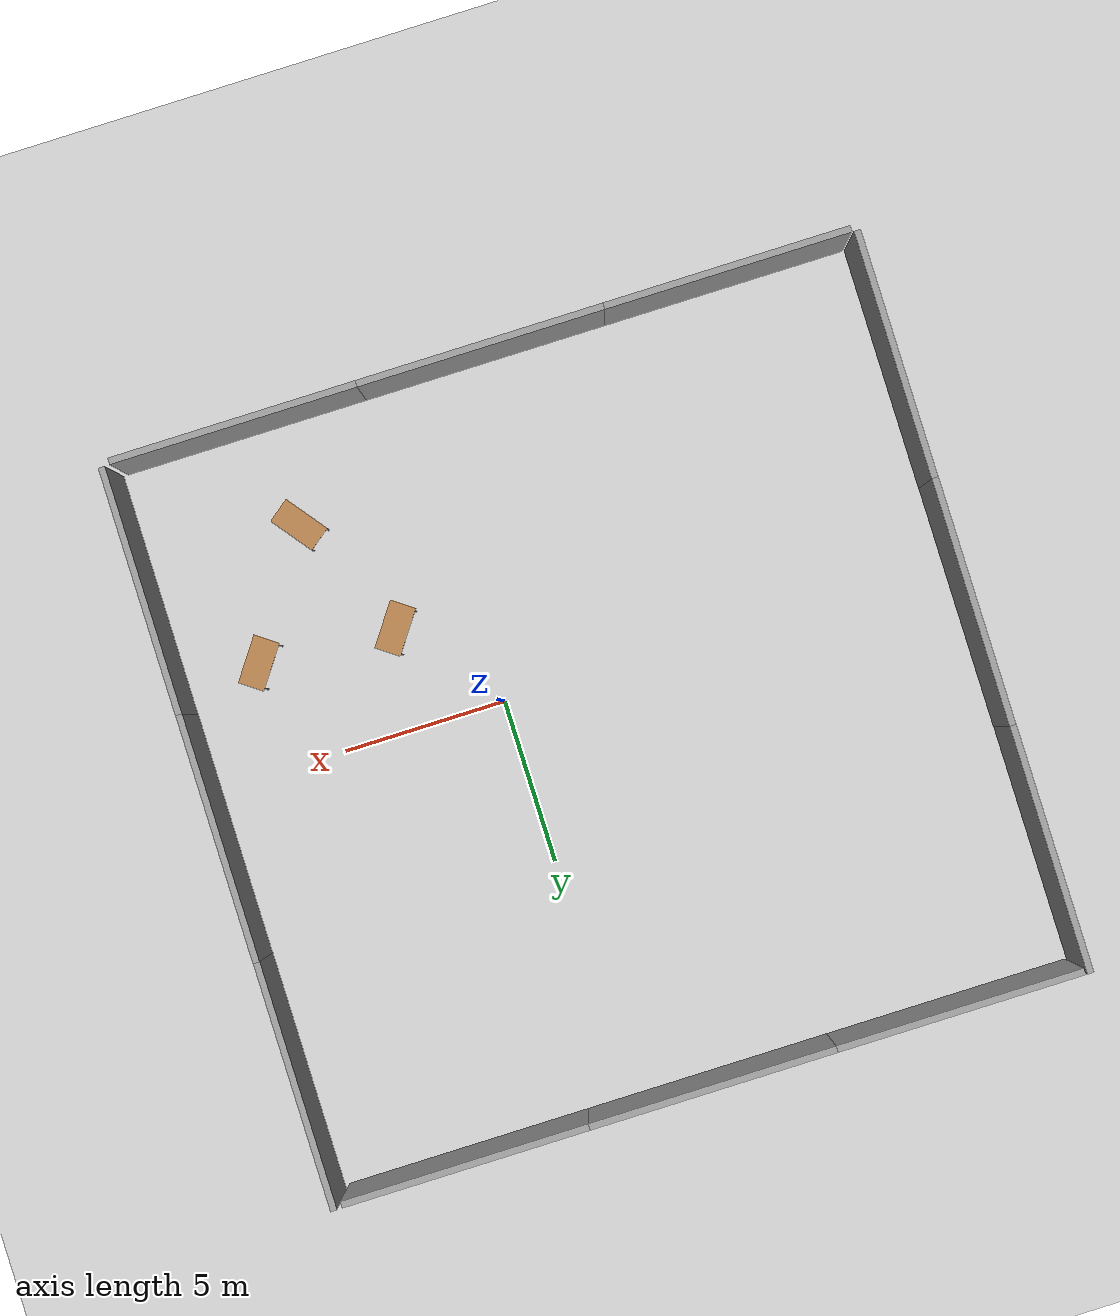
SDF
<sdf version="1.7">
 <world name="default">
  <light name="sun" type="directional">
   <pose>0 0 10 0 -0 0</pose>
   <diffuse>0.8 0.8 0.8 1</diffuse>
   <specular>0.2 0.2 0.2 1</specular>
   <attenuation>
    <range>1000</range>
    <constant>0.9</constant>
    <linear>0.01</linear>
    <quadratic>0.001</quadratic>
   </attenuation>
   <direction>-0.5 0.1 -0.9</direction>
   <spot><inner_angle>0</inner_angle><outer_angle>0</outer_angle><falloff>0</falloff></spot>
  </light>
  <model name="ground_plane">
   <static>1</static>
   <link name="link">
    <collision name="collision">
     <geometry><plane><normal>0 0 1</normal><size>100 100</size></plane></geometry>
     <surface>
      <contact><collide_bitmask>65535</collide_bitmask></contact>
      <friction><ode><mu>100</mu><mu2>50</mu2></ode></friction>
     </surface>
    </collision>
    <visual name="visual">
     <cast_shadows>0</cast_shadows>
     <geometry><plane><normal>0 0 1</normal><size>100 100</size></plane></geometry>
     <material>
      <script><uri>file://media/materials/scripts/gazebo.material</uri><name>Gazebo/Grey</name></script>
     </material>
    </visual>
   </link>
  </model>
  <gravity>0 0 -9.8</gravity>
  <magnetic_field>6e-06 2.3e-05 -4.2e-05</magnetic_field>
  <atmosphere type="adiabatic"/>
  <physics type="ode">
   <max_step_size>0.001</max_step_size>
   <real_time_factor>1</real_time_factor>
   <real_time_update_rate>1000</real_time_update_rate>
  </physics>
  <scene><ambient>0.4 0.4 0.4 1</ambient><background>0.7 0.7 0.7 1</background><shadows>1</shadows></scene>
  <spherical_coordinates>
   <surface_model>EARTH_WGS84</surface_model>
   <latitude_deg>0</latitude_deg>
   <longitude_deg>0</longitude_deg>
   <elevation>0</elevation>
   <heading_deg>0</heading_deg>
  </spherical_coordinates>
  <model name="grey_wall_clone_0">
   <static>1</static>
   <link name="link">
    <pose>0 0 1.4 0 -0 0</pose>
    <collision name="collision"><geometry><box><size>7.5 0.2 2.8</size></box></geometry></collision>
    <visual name="visual">
     <cast_shadows>0</cast_shadows>
     <geometry><box><size>7.5 0.2 2.8</size></box></geometry>
     <material>
      <script>
       <uri>model://grey_wall/materials/scripts</uri>
       <uri>model://grey_wall/materials/textures</uri>
       <name>vrc/grey_wall</name>
      </script>
     </material>
    </visual>
   </link>
   <pose>5 12.5 0 0 -0 0</pose>
  </model>
  <model name="grey_wall_clone_1">
   <static>1</static>
   <link name="link">
    <pose>0 0 1.4 0 -0 0</pose>
    <collision name="collision"><geometry><box><size>7.5 0.2 2.8</size></box></geometry></collision>
    <visual name="visual">
     <cast_shadows>0</cast_shadows>
     <geometry><box><size>7.5 0.2 2.8</size></box></geometry>
     <material>
      <script>
       <uri>model://grey_wall/materials/scripts</uri>
       <uri>model://grey_wall/materials/textures</uri>
       <name>vrc/grey_wall</name>
      </script>
     </material>
    </visual>
   </link>
   <pose>-2.5 12.5 0 0 -0 0</pose>
  </model>
  <model name="grey_wall_clone_1_clone">
   <static>1</static>
   <link name="link">
    <pose>0 0 1.4 0 -0 0</pose>
    <collision name="collision"><geometry><box><size>7.5 0.2 2.8</size></box></geometry></collision>
    <visual name="visual">
     <cast_shadows>0</cast_shadows>
     <geometry><box><size>7.5 0.2 2.8</size></box></geometry>
     <material>
      <script>
       <uri>model://grey_wall/materials/scripts</uri>
       <uri>model://grey_wall/materials/textures</uri>
       <name>vrc/grey_wall</name>
      </script>
     </material>
    </visual>
   </link>
   <pose>-10.0 12.5 0 0 -0 0</pose>
  </model>
  <model name="grey_wall_clone_2_clone">
   <static>1</static>
   <link name="link">
    <pose>0 0 1.4 0 -0 0</pose>
    <collision name="collision"><geometry><box><size>7.5 0.2 2.8</size></box></geometry></collision>
    <visual name="visual">
     <cast_shadows>0</cast_shadows>
     <geometry><box><size>7.5 0.2 2.8</size></box></geometry>
     <material>
      <script>
       <uri>model://grey_wall/materials/scripts</uri>
       <uri>model://grey_wall/materials/textures</uri>
       <name>vrc/grey_wall</name>
      </script>
     </material>
    </visual>
   </link>
   <pose>-13.9 8.85 0 0 -0 1.57</pose>
  </model>
  <model name="grey_wall_clone_2_clone_0">
   <static>1</static>
   <link name="link">
    <pose>0 0 1.4 0 -0 0</pose>
    <collision name="collision"><geometry><box><size>7.5 0.2 2.8</size></box></geometry></collision>
    <visual name="visual">
     <cast_shadows>0</cast_shadows>
     <geometry><box><size>7.5 0.2 2.8</size></box></geometry>
     <material>
      <script>
       <uri>model://grey_wall/materials/scripts</uri>
       <uri>model://grey_wall/materials/textures</uri>
       <name>vrc/grey_wall</name>
      </script>
     </material>
    </visual>
   </link>
   <pose>-13.9 1.35 0 0 -0 1.57</pose>
  </model>
  <model name="grey_wall_clone_2_clone_1">
   <static>1</static>
   <link name="link">
    <pose>0 0 1.4 0 -0 0</pose>
    <collision name="collision"><geometry><box><size>7.5 0.2 2.8</size></box></geometry></collision>
    <visual name="visual">
     <cast_shadows>0</cast_shadows>
     <geometry><box><size>7.5 0.2 2.8</size></box></geometry>
     <material>
      <script>
       <uri>model://grey_wall/materials/scripts</uri>
       <uri>model://grey_wall/materials/textures</uri>
       <name>vrc/grey_wall</name>
      </script>
     </material>
    </visual>
   </link>
   <pose>-13.9 -6.15 0 0 -0 1.57</pose>
  </model>
  <model name="grey_wall_clone_1_clone_clone">
   <static>1</static>
   <link name="link">
    <pose>0 0 1.4 0 -0 0</pose>
    <collision name="collision"><geometry><box><size>7.5 0.2 2.8</size></box></geometry></collision>
    <visual name="visual">
     <cast_shadows>0</cast_shadows>
     <geometry><box><size>7.5 0.2 2.8</size></box></geometry>
     <material>
      <script>
       <uri>model://grey_wall/materials/scripts</uri>
       <uri>model://grey_wall/materials/textures</uri>
       <name>vrc/grey_wall</name>
      </script>
     </material>
    </visual>
   </link>
   <pose>-10.0 -10.0 0 0 -0 0</pose>
  </model>
  <model name="grey_wall_clone_1_clone_clone_0">
   <static>1</static>
   <link name="link">
    <pose>0 0 1.4 0 -0 0</pose>
    <collision name="collision"><geometry><box><size>7.5 0.2 2.8</size></box></geometry></collision>
    <visual name="visual">
     <cast_shadows>0</cast_shadows>
     <geometry><box><size>7.5 0.2 2.8</size></box></geometry>
     <material>
      <script>
       <uri>model://grey_wall/materials/scripts</uri>
       <uri>model://grey_wall/materials/textures</uri>
       <name>vrc/grey_wall</name>
      </script>
     </material>
    </visual>
   </link>
   <pose>-2.5 -10.0 0 0 -0 0</pose>
  </model>
  <model name="grey_wall_clone_1_clone_clone_1">
   <static>1</static>
   <link name="link">
    <pose>0 0 1.4 0 -0 0</pose>
    <collision name="collision"><geometry><box><size>7.5 0.2 2.8</size></box></geometry></collision>
    <visual name="visual">
     <cast_shadows>0</cast_shadows>
     <geometry><box><size>7.5 0.2 2.8</size></box></geometry>
     <material>
      <script>
       <uri>model://grey_wall/materials/scripts</uri>
       <uri>model://grey_wall/materials/textures</uri>
       <name>vrc/grey_wall</name>
      </script>
     </material>
    </visual>
   </link>
   <pose>5.0 -10.0 0 0 -0 0</pose>
  </model>
  <model name="grey_wall_clone_2_clone_5">
   <static>1</static>
   <link name="link">
    <pose>0 0 1.4 0 -0 0</pose>
    <collision name="collision"><geometry><box><size>7.5 0.2 2.8</size></box></geometry></collision>
    <visual name="visual">
     <cast_shadows>0</cast_shadows>
     <geometry><box><size>7.5 0.2 2.8</size></box></geometry>
     <material>
      <script>
       <uri>model://grey_wall/materials/scripts</uri>
       <uri>model://grey_wall/materials/textures</uri>
       <name>vrc/grey_wall</name>
      </script>
     </material>
    </visual>
   </link>
   <pose>9.0 8.85 0 0 -0 1.57</pose>
  </model>
  <model name="grey_wall_clone_2_clone_6">
   <static>1</static>
   <link name="link">
    <pose>0 0 1.4 0 -0 0</pose>
    <collision name="collision"><geometry><box><size>7.5 0.2 2.8</size></box></geometry></collision>
    <visual name="visual">
     <cast_shadows>0</cast_shadows>
     <geometry><box><size>7.5 0.2 2.8</size></box></geometry>
     <material>
      <script>
       <uri>model://grey_wall/materials/scripts</uri>
       <uri>model://grey_wall/materials/textures</uri>
       <name>vrc/grey_wall</name>
      </script>
     </material>
    </visual>
   </link>
   <pose>9 1.35 0 0 -0 1.57</pose>
  </model>
  <model name="grey_wall_clone_2_clone_7">
   <static>1</static>
   <link name="link">
    <pose>0 0 1.4 0 -0 0</pose>
    <collision name="collision"><geometry><box><size>7.5 0.2 2.8</size></box></geometry></collision>
    <visual name="visual">
     <cast_shadows>0</cast_shadows>
     <geometry><box><size>7.5 0.2 2.8</size></box></geometry>
     <material>
      <script>
       <uri>model://grey_wall/materials/scripts</uri>
       <uri>model://grey_wall/materials/textures</uri>
       <name>vrc/grey_wall</name>
      </script>
     </material>
    </visual>
   </link>
   <pose>9 -6.15 0 0 -0 1.57</pose>
  </model>
  <model name="table">
   <static>1</static>
   <link name="link">
    <collision name="surface">
     <pose>0 0 1 0 -0 0</pose>
     <geometry><box><size>1.5 0.8 0.03</size></box></geometry>
     <surface><friction><ode><mu>0.6</mu><mu2>0.6</mu2></ode></friction></surface>
    </collision>
    <visual name="visual1">
     <pose>0 0 1 0 -0 0</pose>
     <geometry><box><size>1.5 0.8 0.03</size></box></geometry>
     <material>
      <script><uri>file://media/materials/scripts/gazebo.material</uri><name>Gazebo/Wood</name></script>
     </material>
    </visual>
    <collision name="front_left_leg">
     <pose>0.68 0.38 0.5 0 -0 0</pose>
     <geometry><cylinder><radius>0.02</radius><length>1</length></cylinder></geometry>
    </collision>
    <visual name="front_left_leg">
     <pose>0.68 0.38 0.5 0 -0 0</pose>
     <geometry><cylinder><radius>0.02</radius><length>1</length></cylinder></geometry>
     <material>
      <script><uri>file://media/materials/scripts/gazebo.material</uri><name>Gazebo/Grey</name></script>
     </material>
    </visual>
    <collision name="front_right_leg">
     <pose>0.68 -0.38 0.5 0 -0 0</pose>
     <geometry><cylinder><radius>0.02</radius><length>1</length></cylinder></geometry>
    </collision>
    <visual name="front_right_leg">
     <pose>0.68 -0.38 0.5 0 -0 0</pose>
     <geometry><cylinder><radius>0.02</radius><length>1</length></cylinder></geometry>
     <material>
      <script><uri>file://media/materials/scripts/gazebo.material</uri><name>Gazebo/Grey</name></script>
     </material>
    </visual>
    <collision name="back_right_leg">
     <pose>-0.68 -0.38 0.5 0 -0 0</pose>
     <geometry><cylinder><radius>0.02</radius><length>1</length></cylinder></geometry>
    </collision>
    <visual name="back_right_leg">
     <pose>-0.68 -0.38 0.5 0 -0 0</pose>
     <geometry><cylinder><radius>0.02</radius><length>1</length></cylinder></geometry>
     <material>
      <script><uri>file://media/materials/scripts/gazebo.material</uri><name>Gazebo/Grey</name></script>
     </material>
    </visual>
    <collision name="back_left_leg">
     <pose>-0.68 0.38 0.5 0 -0 0</pose>
     <geometry><cylinder><radius>0.02</radius><length>1</length></cylinder></geometry>
    </collision>
    <visual name="back_left_leg">
     <pose>-0.68 0.38 0.5 0 -0 0</pose>
     <geometry><cylinder><radius>0.02</radius><length>1</length></cylinder></geometry>
     <material>
      <script><uri>file://media/materials/scripts/gazebo.material</uri><name>Gazebo/Grey</name></script>
     </material>
    </visual>
   </link>
   <pose>4.21111 -6.81371 0 0 -0 2.22419</pose>
  </model>
  <model name="table_clone">
   <static>1</static>
   <link name="link">
    <collision name="surface">
     <pose>0 0 1 0 -0 0</pose>
     <geometry><box><size>1.5 0.8 0.03</size></box></geometry>
     <surface><friction><ode><mu>0.6</mu><mu2>0.6</mu2></ode></friction></surface>
    </collision>
    <visual name="visual1">
     <pose>0 0 1 0 -0 0</pose>
     <geometry><box><size>1.5 0.8 0.03</size></box></geometry>
     <material>
      <script><uri>file://media/materials/scripts/gazebo.material</uri><name>Gazebo/Wood</name></script>
     </material>
    </visual>
    <collision name="front_left_leg">
     <pose>0.68 0.38 0.5 0 -0 0</pose>
     <geometry><cylinder><radius>0.02</radius><length>1</length></cylinder></geometry>
    </collision>
    <visual name="front_left_leg">
     <pose>0.68 0.38 0.5 0 -0 0</pose>
     <geometry><cylinder><radius>0.02</radius><length>1</length></cylinder></geometry>
     <material>
      <script><uri>file://media/materials/scripts/gazebo.material</uri><name>Gazebo/Grey</name></script>
     </material>
    </visual>
    <collision name="front_right_leg">
     <pose>0.68 -0.38 0.5 0 -0 0</pose>
     <geometry><cylinder><radius>0.02</radius><length>1</length></cylinder></geometry>
    </collision>
    <visual name="front_right_leg">
     <pose>0.68 -0.38 0.5 0 -0 0</pose>
     <geometry><cylinder><radius>0.02</radius><length>1</length></cylinder></geometry>
     <material>
      <script><uri>file://media/materials/scripts/gazebo.material</uri><name>Gazebo/Grey</name></script>
     </material>
    </visual>
    <collision name="back_right_leg">
     <pose>-0.68 -0.38 0.5 0 -0 0</pose>
     <geometry><cylinder><radius>0.02</radius><length>1</length></cylinder></geometry>
    </collision>
    <visual name="back_right_leg">
     <pose>-0.68 -0.38 0.5 0 -0 0</pose>
     <geometry><cylinder><radius>0.02</radius><length>1</length></cylinder></geometry>
     <material>
      <script><uri>file://media/materials/scripts/gazebo.material</uri><name>Gazebo/Grey</name></script>
     </material>
    </visual>
    <collision name="back_left_leg">
     <pose>-0.68 0.38 0.5 0 -0 0</pose>
     <geometry><cylinder><radius>0.02</radius><length>1</length></cylinder></geometry>
    </collision>
    <visual name="back_left_leg">
     <pose>-0.68 0.38 0.5 0 -0 0</pose>
     <geometry><cylinder><radius>0.02</radius><length>1</length></cylinder></geometry>
     <material>
      <script><uri>file://media/materials/scripts/gazebo.material</uri><name>Gazebo/Grey</name></script>
     </material>
    </visual>
   </link>
   <pose>6.56908 -3.26058 0 0 -0 0.954409</pose>
  </model>
  <model name="table_clone_0">
   <static>1</static>
   <link name="link">
    <collision name="surface">
     <pose>0 0 1 0 -0 0</pose>
     <geometry><box><size>1.5 0.8 0.03</size></box></geometry>
     <surface><friction><ode><mu>0.6</mu><mu2>0.6</mu2></ode></friction></surface>
    </collision>
    <visual name="visual1">
     <pose>0 0 1 0 -0 0</pose>
     <geometry><box><size>1.5 0.8 0.03</size></box></geometry>
     <material>
      <script><uri>file://media/materials/scripts/gazebo.material</uri><name>Gazebo/Wood</name></script>
     </material>
    </visual>
    <collision name="front_left_leg">
     <pose>0.68 0.38 0.5 0 -0 0</pose>
     <geometry><cylinder><radius>0.02</radius><length>1</length></cylinder></geometry>
    </collision>
    <visual name="front_left_leg">
     <pose>0.68 0.38 0.5 0 -0 0</pose>
     <geometry><cylinder><radius>0.02</radius><length>1</length></cylinder></geometry>
     <material>
      <script><uri>file://media/materials/scripts/gazebo.material</uri><name>Gazebo/Grey</name></script>
     </material>
    </visual>
    <collision name="front_right_leg">
     <pose>0.68 -0.38 0.5 0 -0 0</pose>
     <geometry><cylinder><radius>0.02</radius><length>1</length></cylinder></geometry>
    </collision>
    <visual name="front_right_leg">
     <pose>0.68 -0.38 0.5 0 -0 0</pose>
     <geometry><cylinder><radius>0.02</radius><length>1</length></cylinder></geometry>
     <material>
      <script><uri>file://media/materials/scripts/gazebo.material</uri><name>Gazebo/Grey</name></script>
     </material>
    </visual>
    <collision name="back_right_leg">
     <pose>-0.68 -0.38 0.5 0 -0 0</pose>
     <geometry><cylinder><radius>0.02</radius><length>1</length></cylinder></geometry>
    </collision>
    <visual name="back_right_leg">
     <pose>-0.68 -0.38 0.5 0 -0 0</pose>
     <geometry><cylinder><radius>0.02</radius><length>1</length></cylinder></geometry>
     <material>
      <script><uri>file://media/materials/scripts/gazebo.material</uri><name>Gazebo/Grey</name></script>
     </material>
    </visual>
    <collision name="back_left_leg">
     <pose>-0.68 0.38 0.5 0 -0 0</pose>
     <geometry><cylinder><radius>0.02</radius><length>1</length></cylinder></geometry>
    </collision>
    <visual name="back_left_leg">
     <pose>-0.68 0.38 0.5 0 -0 0</pose>
     <geometry><cylinder><radius>0.02</radius><length>1</length></cylinder></geometry>
     <material>
      <script><uri>file://media/materials/scripts/gazebo.material</uri><name>Gazebo/Grey</name></script>
     </material>
    </visual>
   </link>
   <pose>2.40226 -3.03446 0 0 -0 0.954409</pose>
  </model>
 </world>
</sdf>
